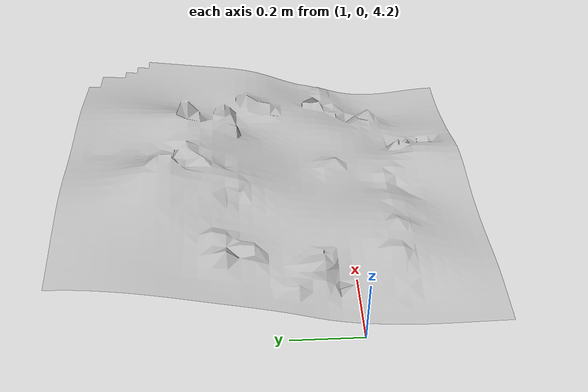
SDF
<?xml version="1.0"?>
<sdf version="1.6">
  <model name="reconstruction">
    <link name="base_link">
      <visual name="visual">
        <geometry>
          <mesh>
            <uri>file:///home/robot/.gazebo/models/3Dreconstruction/meshes/reconstruction.stl</uri>
            <scale>1 1 1</scale>
          </mesh>
        </geometry>
      </visual>
      <collision name="collision">
        <geometry>
          <mesh>
            <uri>file:///home/robot/.gazebo/models/3Dreconstruction/meshes/reconstruction.stl</uri>
            <scale>1 1 1</scale>
          </mesh>
        </geometry>
      </collision>
    </link>
  </model>
</sdf>
